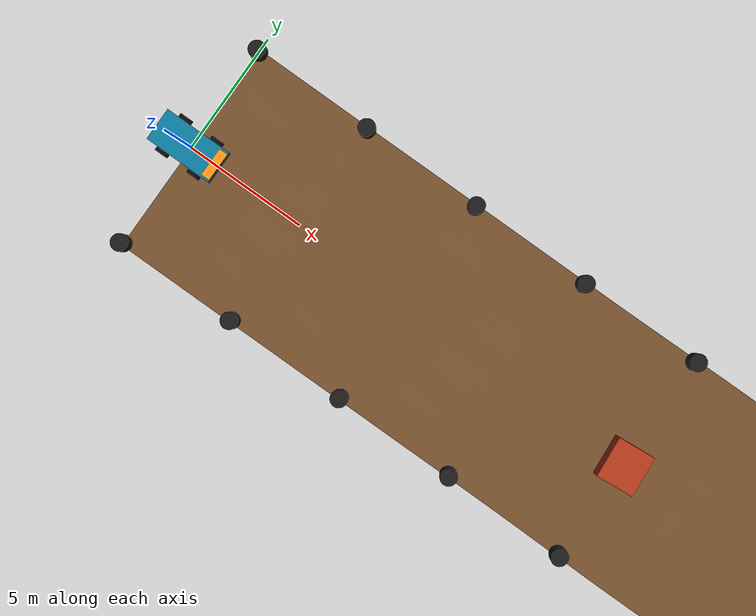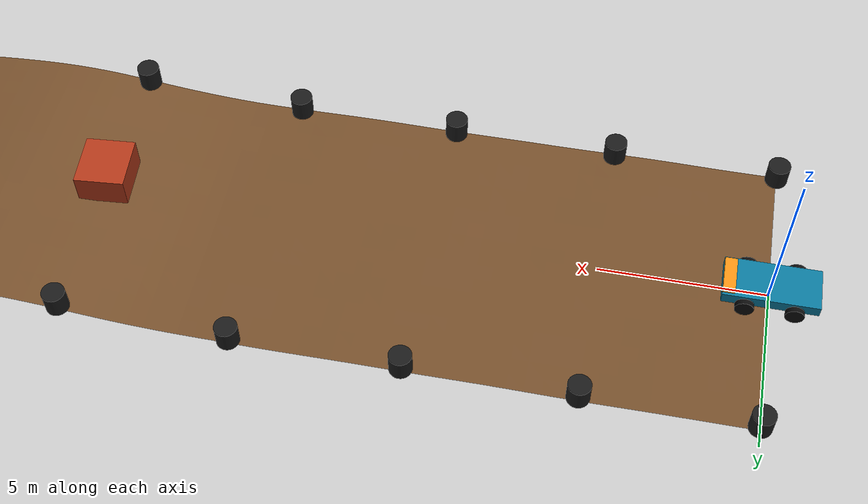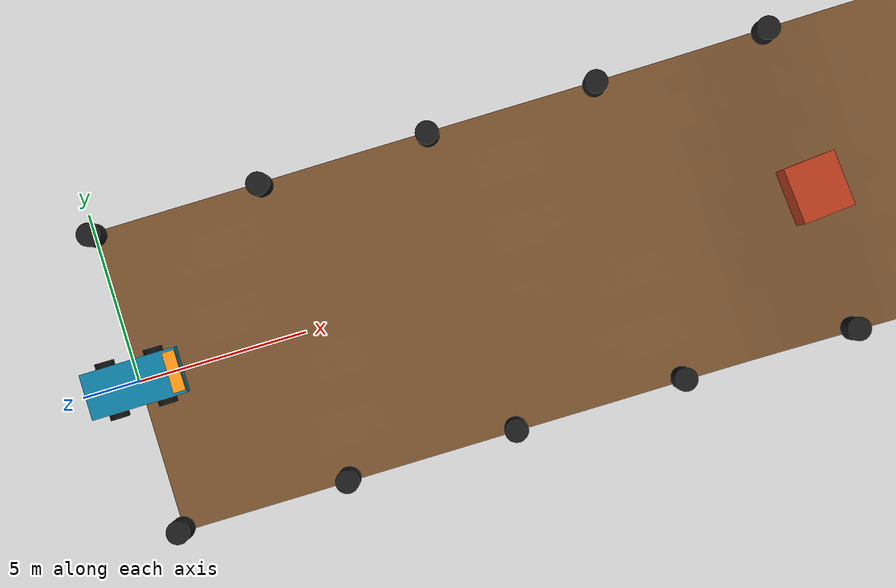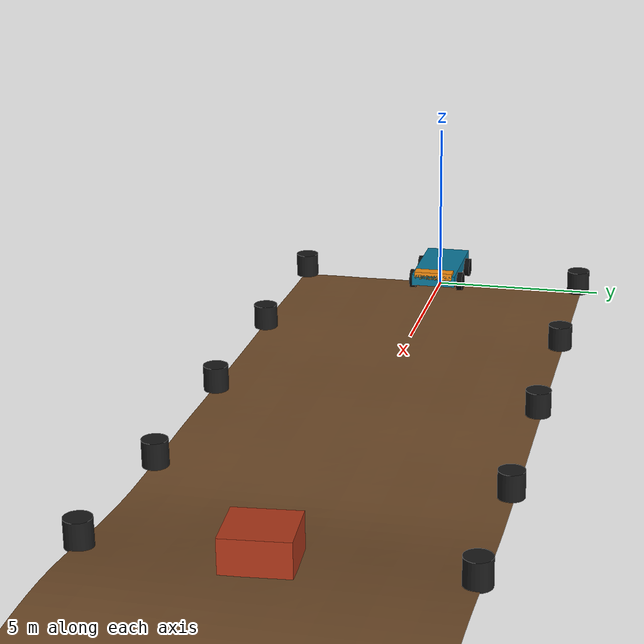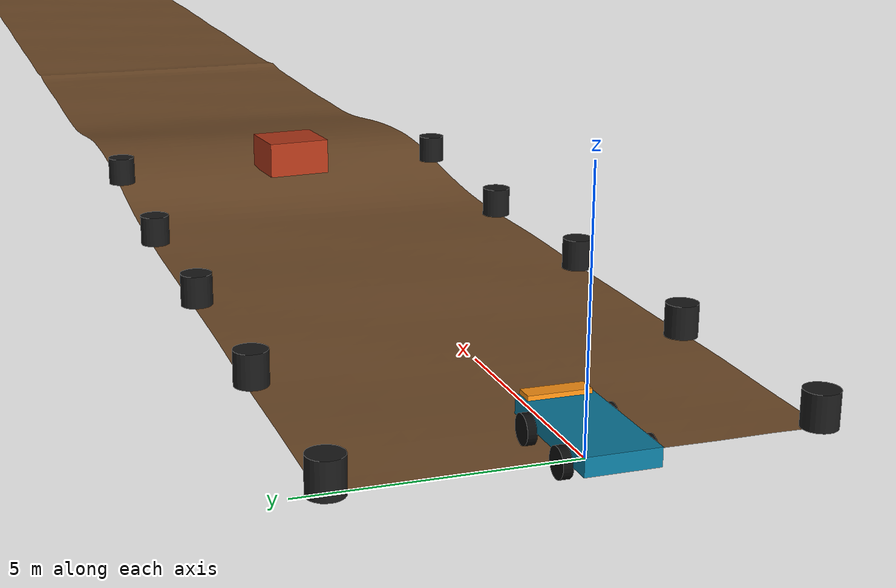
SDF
<sdf version="1.9">
 <world name="baja_track">
  <model name="dirt_road">
   <static>true</static>
   <link name="road">
    <collision name="collision">
     <geometry>
      <mesh><uri>file:///home/pandafixle/Desktop/baja_cloud_sim/runtime/scenario_0/dirt_road.obj</uri></mesh>
     </geometry>
     <surface>
      <friction><ode><mu>1.25</mu><mu2>1.0</mu2></ode></friction>
      <contact><ode><kp>800000</kp><kd>220</kd><max_vel>0.08</max_vel><min_depth>0.0005</min_depth></ode></contact>
     </surface>
    </collision>
    <visual name="visual">
     <geometry>
      <mesh><uri>file:///home/pandafixle/Desktop/baja_cloud_sim/runtime/scenario_0/dirt_road.obj</uri></mesh>
     </geometry>
     <material>
      <ambient>0.30 0.20 0.11 1</ambient>
      <diffuse>0.46 0.31 0.17 1</diffuse>
      <pbr><metal><roughness>1.0</roughness><metalness>0.0</metalness></metal></pbr>
     </material>
    </visual>
   </link>
  </model>
  <model name="obstacle_0">
   <static>true</static>
   <pose>20.00000 -0.27270 0.82346 0 0 0.08286</pose>
   <link name="body">
    <collision name="collision">
     <geometry><box><size>1.5004 1.6368 0.9145</size></box></geometry>
     <surface><friction><ode><mu>0.9</mu><mu2>0.9</mu2></ode></friction></surface>
    </collision>
    <visual name="visual">
     <geometry><box><size>1.5004 1.6368 0.9145</size></box></geometry>
     <material>
      <ambient>0.42 0.12 0.07 1</ambient>
      <diffuse>0.70 0.22 0.10 1</diffuse>
      <pbr><metal><roughness>0.9</roughness><metalness>0.0</metalness></metal></pbr>
     </material>
    </visual>
   </link>
  </model>
  <model name="edge_tire_0">
   <static>true</static>
   <pose>0.00000 4.40000 0.35000 0 0 0.00000</pose>
   <link name="body">
    <collision name="collision">
     <geometry><cylinder><radius>0.340</radius><length>0.700</length></cylinder></geometry>
     <surface><friction><ode><mu>0.9</mu><mu2>0.9</mu2></ode></friction></surface>
    </collision>
    <visual name="visual">
     <geometry><cylinder><radius>0.340</radius><length>0.700</length></cylinder></geometry>
     <material>
      <ambient>0.05 0.05 0.05 1</ambient>
      <diffuse>0.10 0.10 0.10 1</diffuse>
      <pbr><metal><roughness>0.8</roughness><metalness>0.0</metalness></metal></pbr>
     </material>
    </visual>
   </link>
  </model>
  <model name="edge_tire_1">
   <static>true</static>
   <pose>0.00000 -4.40000 0.35000 0 0 0.00000</pose>
   <link name="body">
    <collision name="collision">
     <geometry><cylinder><radius>0.340</radius><length>0.700</length></cylinder></geometry>
     <surface><friction><ode><mu>0.9</mu><mu2>0.9</mu2></ode></friction></surface>
    </collision>
    <visual name="visual">
     <geometry><cylinder><radius>0.340</radius><length>0.700</length></cylinder></geometry>
     <material>
      <ambient>0.05 0.05 0.05 1</ambient>
      <diffuse>0.10 0.10 0.10 1</diffuse>
      <pbr><metal><roughness>0.8</roughness><metalness>0.0</metalness></metal></pbr>
     </material>
    </visual>
   </link>
  </model>
  <model name="edge_tire_2">
   <static>true</static>
   <pose>5.00000 4.40000 0.35000 0 0 0.00000</pose>
   <link name="body">
    <collision name="collision">
     <geometry><cylinder><radius>0.340</radius><length>0.700</length></cylinder></geometry>
     <surface><friction><ode><mu>0.9</mu><mu2>0.9</mu2></ode></friction></surface>
    </collision>
    <visual name="visual">
     <geometry><cylinder><radius>0.340</radius><length>0.700</length></cylinder></geometry>
     <material>
      <ambient>0.05 0.05 0.05 1</ambient>
      <diffuse>0.10 0.10 0.10 1</diffuse>
      <pbr><metal><roughness>0.8</roughness><metalness>0.0</metalness></metal></pbr>
     </material>
    </visual>
   </link>
  </model>
  <model name="edge_tire_3">
   <static>true</static>
   <pose>5.00000 -4.40000 0.35000 0 0 0.00000</pose>
   <link name="body">
    <collision name="collision">
     <geometry><cylinder><radius>0.340</radius><length>0.700</length></cylinder></geometry>
     <surface><friction><ode><mu>0.9</mu><mu2>0.9</mu2></ode></friction></surface>
    </collision>
    <visual name="visual">
     <geometry><cylinder><radius>0.340</radius><length>0.700</length></cylinder></geometry>
     <material>
      <ambient>0.05 0.05 0.05 1</ambient>
      <diffuse>0.10 0.10 0.10 1</diffuse>
      <pbr><metal><roughness>0.8</roughness><metalness>0.0</metalness></metal></pbr>
     </material>
    </visual>
   </link>
  </model>
  <model name="edge_tire_4">
   <static>true</static>
   <pose>10.00000 4.40000 0.35000 0 0 0.00000</pose>
   <link name="body">
    <collision name="collision">
     <geometry><cylinder><radius>0.340</radius><length>0.700</length></cylinder></geometry>
     <surface><friction><ode><mu>0.9</mu><mu2>0.9</mu2></ode></friction></surface>
    </collision>
    <visual name="visual">
     <geometry><cylinder><radius>0.340</radius><length>0.700</length></cylinder></geometry>
     <material>
      <ambient>0.05 0.05 0.05 1</ambient>
      <diffuse>0.10 0.10 0.10 1</diffuse>
      <pbr><metal><roughness>0.8</roughness><metalness>0.0</metalness></metal></pbr>
     </material>
    </visual>
   </link>
  </model>
  <model name="edge_tire_5">
   <static>true</static>
   <pose>10.00000 -4.40000 0.35000 0 0 0.00000</pose>
   <link name="body">
    <collision name="collision">
     <geometry><cylinder><radius>0.340</radius><length>0.700</length></cylinder></geometry>
     <surface><friction><ode><mu>0.9</mu><mu2>0.9</mu2></ode></friction></surface>
    </collision>
    <visual name="visual">
     <geometry><cylinder><radius>0.340</radius><length>0.700</length></cylinder></geometry>
     <material>
      <ambient>0.05 0.05 0.05 1</ambient>
      <diffuse>0.10 0.10 0.10 1</diffuse>
      <pbr><metal><roughness>0.8</roughness><metalness>0.0</metalness></metal></pbr>
     </material>
    </visual>
   </link>
  </model>
  <model name="edge_tire_6">
   <static>true</static>
   <pose>15.00000 4.40000 0.35000 0 0 0.00000</pose>
   <link name="body">
    <collision name="collision">
     <geometry><cylinder><radius>0.340</radius><length>0.700</length></cylinder></geometry>
     <surface><friction><ode><mu>0.9</mu><mu2>0.9</mu2></ode></friction></surface>
    </collision>
    <visual name="visual">
     <geometry><cylinder><radius>0.340</radius><length>0.700</length></cylinder></geometry>
     <material>
      <ambient>0.05 0.05 0.05 1</ambient>
      <diffuse>0.10 0.10 0.10 1</diffuse>
      <pbr><metal><roughness>0.8</roughness><metalness>0.0</metalness></metal></pbr>
     </material>
    </visual>
   </link>
  </model>
  <model name="edge_tire_7">
   <static>true</static>
   <pose>15.00000 -4.40000 0.35000 0 0 0.00000</pose>
   <link name="body">
    <collision name="collision">
     <geometry><cylinder><radius>0.340</radius><length>0.700</length></cylinder></geometry>
     <surface><friction><ode><mu>0.9</mu><mu2>0.9</mu2></ode></friction></surface>
    </collision>
    <visual name="visual">
     <geometry><cylinder><radius>0.340</radius><length>0.700</length></cylinder></geometry>
     <material>
      <ambient>0.05 0.05 0.05 1</ambient>
      <diffuse>0.10 0.10 0.10 1</diffuse>
      <pbr><metal><roughness>0.8</roughness><metalness>0.0</metalness></metal></pbr>
     </material>
    </visual>
   </link>
  </model>
  <model name="edge_tire_8">
   <static>true</static>
   <pose>20.00000 4.40000 0.68619 0 0 0.00000</pose>
   <link name="body">
    <collision name="collision">
     <geometry><cylinder><radius>0.340</radius><length>0.700</length></cylinder></geometry>
     <surface><friction><ode><mu>0.9</mu><mu2>0.9</mu2></ode></friction></surface>
    </collision>
    <visual name="visual">
     <geometry><cylinder><radius>0.340</radius><length>0.700</length></cylinder></geometry>
     <material>
      <ambient>0.05 0.05 0.05 1</ambient>
      <diffuse>0.10 0.10 0.10 1</diffuse>
      <pbr><metal><roughness>0.8</roughness><metalness>0.0</metalness></metal></pbr>
     </material>
    </visual>
   </link>
  </model>
  <model name="edge_tire_9">
   <static>true</static>
   <pose>20.00000 -4.40000 0.68619 0 0 0.00000</pose>
   <link name="body">
    <collision name="collision">
     <geometry><cylinder><radius>0.340</radius><length>0.700</length></cylinder></geometry>
     <surface><friction><ode><mu>0.9</mu><mu2>0.9</mu2></ode></friction></surface>
    </collision>
    <visual name="visual">
     <geometry><cylinder><radius>0.340</radius><length>0.700</length></cylinder></geometry>
     <material>
      <ambient>0.05 0.05 0.05 1</ambient>
      <diffuse>0.10 0.10 0.10 1</diffuse>
      <pbr><metal><roughness>0.8</roughness><metalness>0.0</metalness></metal></pbr>
     </material>
    </visual>
   </link>
  </model>
  <include>
   <uri>file:///home/pandafixle/Desktop/baja_cloud_sim/install/baja_cloud_sim/share/baja_cloud_sim/models/baja_vehicle</uri>
   <name>baja_vehicle</name>
   <pose>0.00000 0.00000 0.52000 0 0 0.00000</pose>
  </include>
 </world>
</sdf>
